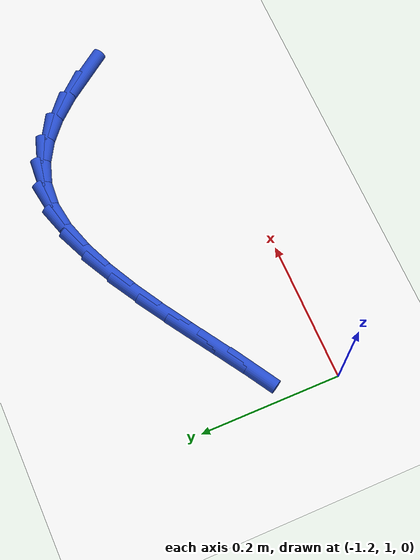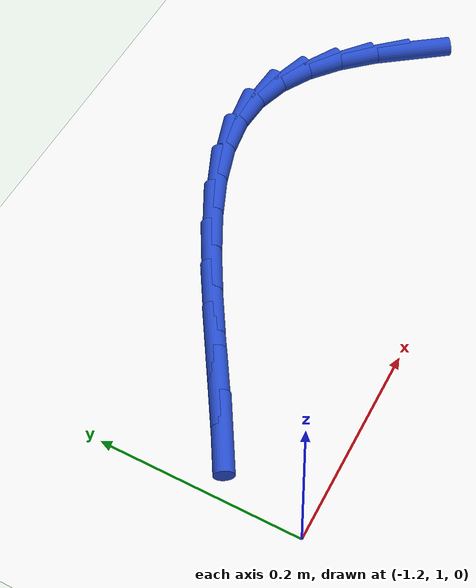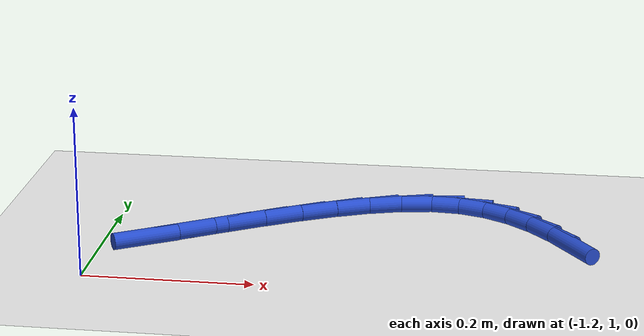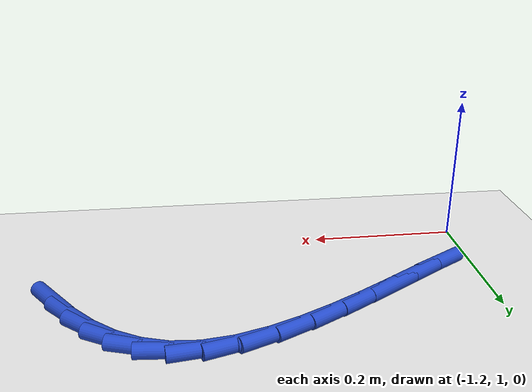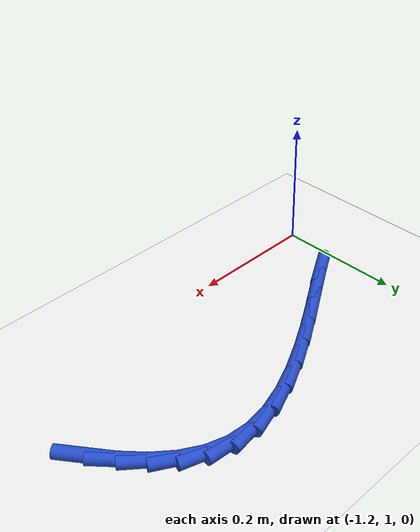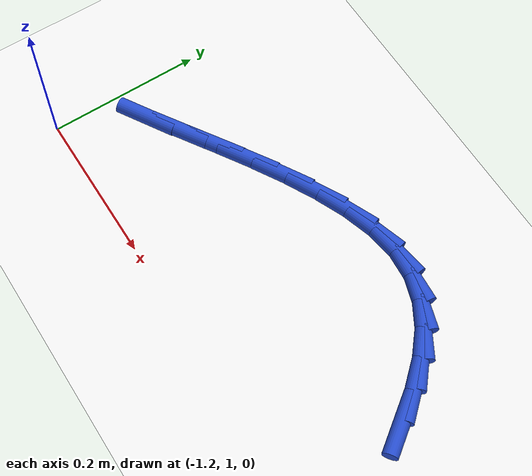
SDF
<sdf version="1.6">
 <world name="default">
  <model name="ground_plane">
   <static>1</static>
   <link name="link">
    <collision name="collision">
     <geometry><plane><normal>0 0 1</normal><size>100 100</size></plane></geometry>
     <surface><friction><ode><mu>100</mu><mu2>50</mu2></ode></friction></surface>
    </collision>
    <visual name="visual">
     <cast_shadows>0</cast_shadows>
     <geometry><plane><normal>0 0 1</normal><size>100 100</size></plane></geometry>
     <material>
      <script><uri>file://media/materials/scripts/gazebo.material</uri><name>Gazebo/WhiteGlow</name></script>
     </material>
    </visual>
   </link>
  </model>
  <model name="line">
   <link name="link_29">
    <pose>-0.6474620170973501 1.1444313891551914 0.01 0 1.57 -0.9443736174853934</pose>
    <collision name="collision">
     <geometry><cylinder><radius>0.01</radius><length>0.08</length></cylinder></geometry>
    </collision>
    <visual name="visual">
     <material>
      <script><name>Gazebo/Blue</name><uri>file://media/materials/scripts/gazebo.material</uri></script>
     </material>
     <geometry><cylinder><radius>0.01</radius><length>0.08</length></cylinder></geometry>
    </visual>
   </link>
   <link name="link_30">
    <pose>-0.6724457705183875 1.1789560282751084 0.01 0 1.57 -0.8438598289288278</pose>
    <collision name="collision">
     <geometry><cylinder><radius>0.01</radius><length>0.08</length></cylinder></geometry>
    </collision>
    <visual name="visual">
     <material>
      <script><name>Gazebo/Blue</name><uri>file://media/materials/scripts/gazebo.material</uri></script>
     </material>
     <geometry><cylinder><radius>0.01</radius><length>0.08</length></cylinder></geometry>
    </visual>
   </link>
   <link name="link_31">
    <pose>-0.6988315028516178 1.2086223981989281 0.01 0 1.57 -0.7078461603763037</pose>
    <collision name="collision">
     <geometry><cylinder><radius>0.01</radius><length>0.08</length></cylinder></geometry>
    </collision>
    <visual name="visual">
     <material>
      <script><name>Gazebo/Blue</name><uri>file://media/materials/scripts/gazebo.material</uri></script>
     </material>
     <geometry><cylinder><radius>0.01</radius><length>0.08</length></cylinder></geometry>
    </visual>
   </link>
   <link name="link_32">
    <pose>-0.7269396732170214 1.2326771035404265 0.01 0 1.57 -0.5305830318928488</pose>
    <collision name="collision">
     <geometry><cylinder><radius>0.01</radius><length>0.08</length></cylinder></geometry>
    </collision>
    <visual name="visual">
     <material>
      <script><name>Gazebo/Blue</name><uri>file://media/materials/scripts/gazebo.material</uri></script>
     </material>
     <geometry><cylinder><radius>0.01</radius><length>0.08</length></cylinder></geometry>
    </visual>
   </link>
   <link name="link_33">
    <pose>-0.7570907407345782 1.2503667489133812 0.01 0 1.57 -0.3143432281464041</pose>
    <collision name="collision">
     <geometry><cylinder><radius>0.01</radius><length>0.08</length></cylinder></geometry>
    </collision>
    <visual name="visual">
     <material>
      <script><name>Gazebo/Blue</name><uri>file://media/materials/scripts/gazebo.material</uri></script>
     </material>
     <geometry><cylinder><radius>0.01</radius><length>0.08</length></cylinder></geometry>
    </visual>
   </link>
   <link name="link_34">
    <pose>-0.7896051645242681 1.2609379389315687 0.01 0 1.57 -0.07654279052104714</pose>
    <collision name="collision">
     <geometry><cylinder><radius>0.01</radius><length>0.08</length></cylinder></geometry>
    </collision>
    <visual name="visual">
     <material>
      <script><name>Gazebo/Blue</name><uri>file://media/materials/scripts/gazebo.material</uri></script>
     </material>
     <geometry><cylinder><radius>0.01</radius><length>0.08</length></cylinder></geometry>
    </visual>
   </link>
   <link name="link_35">
    <pose>-0.8248033536605607 1.263637380437805 0.01 0 1.57 0.14318964473658882</pose>
    <collision name="collision">
     <geometry><cylinder><radius>0.01</radius><length>0.08</length></cylinder></geometry>
    </collision>
    <visual name="visual">
     <material>
      <script><name>Gazebo/Blue</name><uri>file://media/materials/scripts/gazebo.material</uri></script>
     </material>
     <geometry><cylinder><radius>0.01</radius><length>0.08</length></cylinder></geometry>
    </visual>
   </link>
   <link name="link_36">
    <pose>-0.8627856947542022 1.258161224879412 0.01 0 1.57 0.3013100866943954</pose>
    <collision name="collision">
     <geometry><cylinder><radius>0.01</radius><length>0.08</length></cylinder></geometry>
    </collision>
    <visual name="visual">
     <material>
      <script><name>Gazebo/Blue</name><uri>file://media/materials/scripts/gazebo.material</uri></script>
     </material>
     <geometry><cylinder><radius>0.01</radius><length>0.08</length></cylinder></geometry>
    </visual>
   </link>
   <link name="link_37">
    <pose>-0.9029277795782182 1.2456861776602348 0.01 0 1.57 0.40885046792092133</pose>
    <collision name="collision">
     <geometry><cylinder><radius>0.01</radius><length>0.08</length></cylinder></geometry>
    </collision>
    <visual name="visual">
     <material>
      <script><name>Gazebo/Blue</name><uri>file://media/materials/scripts/gazebo.material</uri></script>
     </material>
     <geometry><cylinder><radius>0.01</radius><length>0.08</length></cylinder></geometry>
    </visual>
   </link>
   <link name="link_38">
    <pose>-0.9444561697568606 1.2276933712646212 0.01 0 1.57 0.4816832215368371</pose>
    <collision name="collision">
     <geometry><cylinder><radius>0.01</radius><length>0.08</length></cylinder></geometry>
    </collision>
    <visual name="visual">
     <material>
      <script><name>Gazebo/Blue</name><uri>file://media/materials/scripts/gazebo.material</uri></script>
     </material>
     <geometry><cylinder><radius>0.01</radius><length>0.08</length></cylinder></geometry>
    </visual>
   </link>
   <link name="link_39">
    <pose>-0.9865974269143802 1.2056639381769156 0.01 0 1.57 0.5297823782529048</pose>
    <collision name="collision">
     <geometry><cylinder><radius>0.01</radius><length>0.08</length></cylinder></geometry>
    </collision>
    <visual name="visual">
     <material>
      <script><name>Gazebo/Blue</name><uri>file://media/materials/scripts/gazebo.material</uri></script>
     </material>
     <geometry><cylinder><radius>0.01</radius><length>0.08</length></cylinder></geometry>
    </visual>
   </link>
   <link name="link_40">
    <pose>-1.028578112675028 1.181079010881465 0.01 0 1.57 0.5587077497362689</pose>
    <collision name="collision">
     <geometry><cylinder><radius>0.01</radius><length>0.08</length></cylinder></geometry>
    </collision>
    <visual name="visual">
     <material>
      <script><name>Gazebo/Blue</name><uri>file://media/materials/scripts/gazebo.material</uri></script>
     </material>
     <geometry><cylinder><radius>0.01</radius><length>0.08</length></cylinder></geometry>
    </visual>
   </link>
   <link name="link_41">
    <pose>-1.069643423239414 1.1554069990560547 0.01 0 1.57 0.5711012610190326</pose>
    <collision name="collision">
     <geometry><cylinder><radius>0.01</radius><length>0.08</length></cylinder></geometry>
    </collision>
    <visual name="visual">
     <material>
      <script><name>Gazebo/Blue</name><uri>file://media/materials/scripts/gazebo.material</uri></script>
     </material>
     <geometry><cylinder><radius>0.01</radius><length>0.08</length></cylinder></geometry>
    </visual>
   </link>
   <link name="link_42">
    <pose>-1.1095756104811645 1.1297496361895816 0.01 0 1.57 0.5670435959536316</pose>
    <collision name="collision">
     <geometry><cylinder><radius>0.01</radius><length>0.08</length></cylinder></geometry>
    </collision>
    <visual name="visual">
     <material>
      <script><name>Gazebo/Blue</name><uri>file://media/materials/scripts/gazebo.material</uri></script>
     </material>
     <geometry><cylinder><radius>0.01</radius><length>0.08</length></cylinder></geometry>
    </visual>
   </link>
   <link name="link_43">
    <pose>-1.1487621929503096 1.1047954083381095 0.01 0 1.57 0.5454784414288211</pose>
    <collision name="collision">
     <geometry><cylinder><radius>0.01</radius><length>0.08</length></cylinder></geometry>
    </collision>
    <visual name="visual">
     <material>
      <script><name>Gazebo/Blue</name><uri>file://media/materials/scripts/gazebo.material</uri></script>
     </material>
     <geometry><cylinder><radius>0.01</radius><length>0.08</length></cylinder></geometry>
    </visual>
   </link>
  </model>
 </world>
</sdf>
